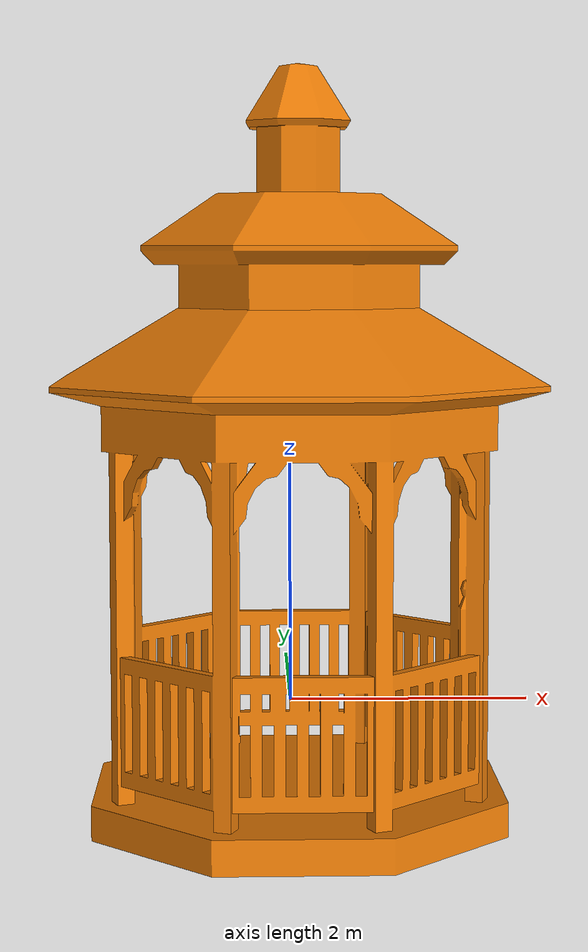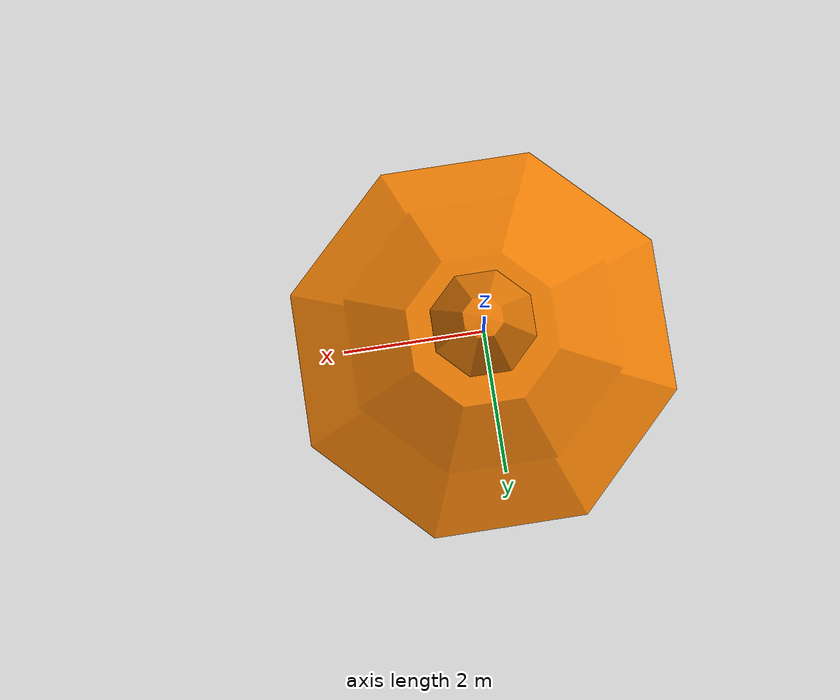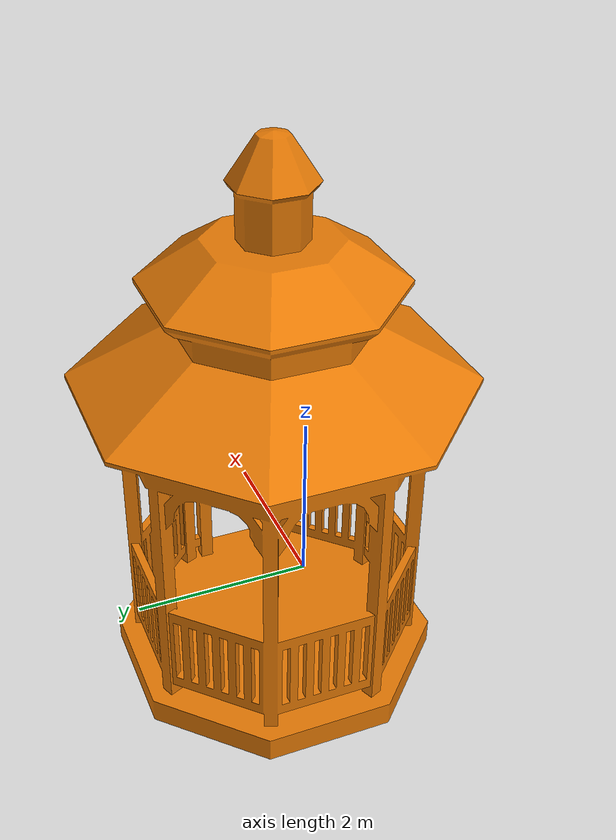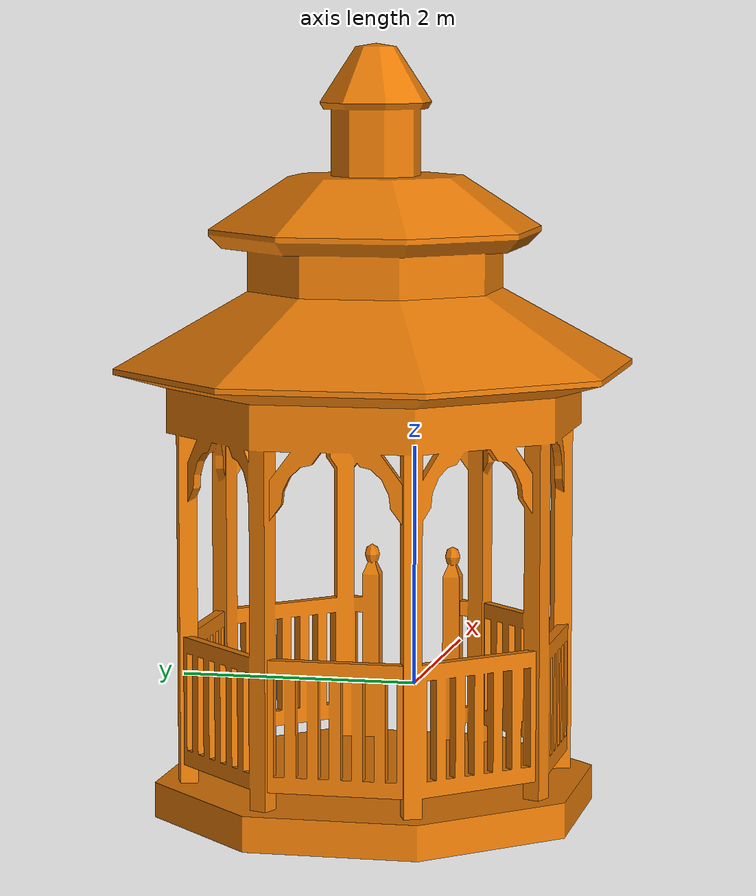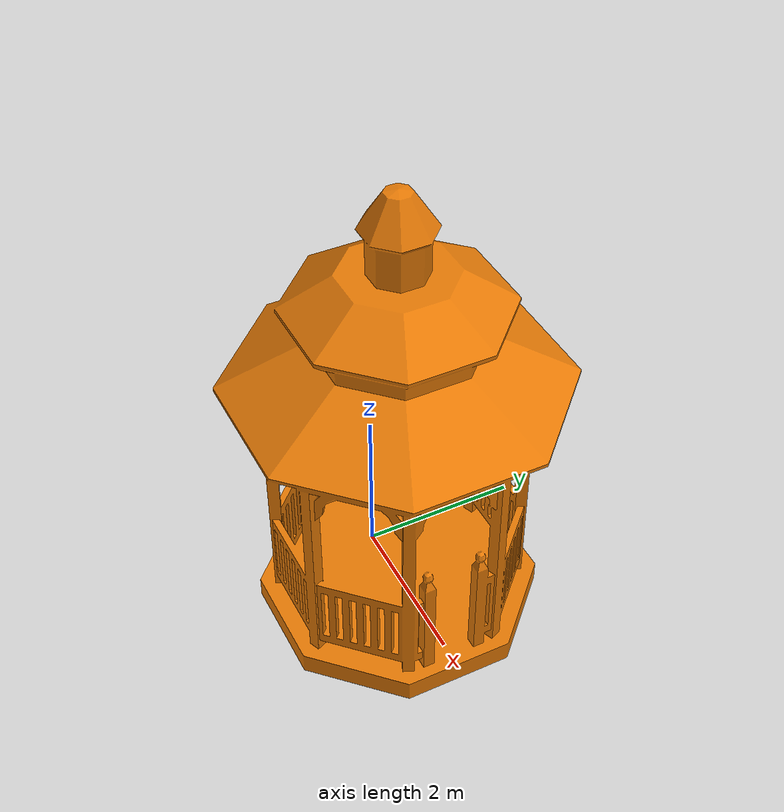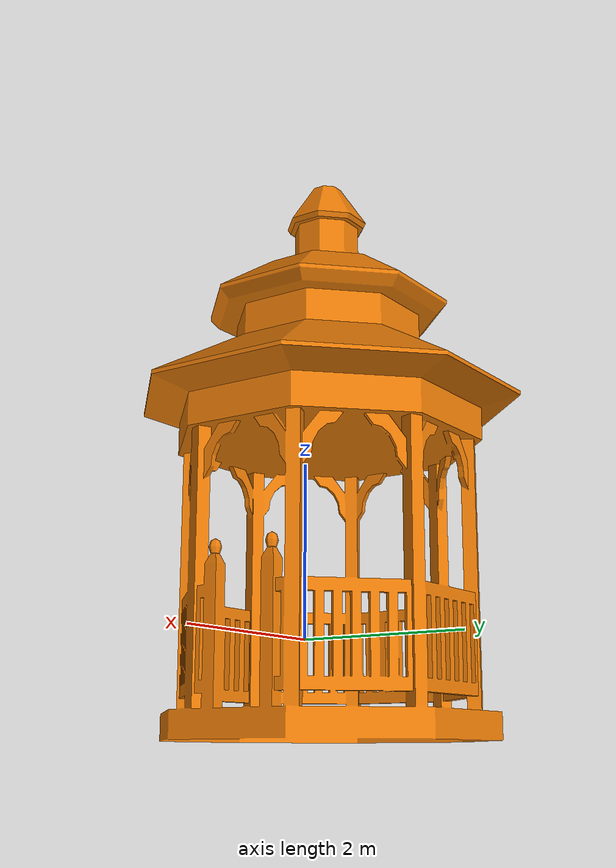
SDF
<?xml version='1.0'?>
<sdf version='1.7'>
  <model name='gazebo'>
    <link name='link'>
      <self_collide>0</self_collide>
      <enable_wind>0</enable_wind>
      <kinematic>0</kinematic>
      <pose>0.076868 0.347087 -1.10059 0 -0 0</pose>
      <gravity>1</gravity>
      <inertial>
        <mass>1</mass>
        <pose>0 0 0 0 -0 0</pose>
        <inertia>
          <ixx>1</ixx>
          <ixy>0</ixy>
          <ixz>0</ixz>
          <iyy>1</iyy>
          <iyz>0</iyz>
          <izz>1</izz>
        </inertia>
      </inertial>
      <visual name='visual'>
        <geometry>
          <mesh>
            <scale>1.5 1.5 2</scale>
            <uri>model://gazebo/meshes/gazebo.dae</uri>
          </mesh>
        </geometry>
        <material>
          <shader type='pixel'>
            <normal_map>__default__</normal_map>
          </shader>
          <script>
            <name>Gazebo/Grey</name>
            <uri>__default__</uri>
          </script>
          <ambient>0.9 0.475 0.02 1</ambient>
          <diffuse>0.7 0.7 0.7 1</diffuse>
          <specular>0.01 0.01 0.01 1</specular>
          <emissive>0 0 0 1</emissive>
        </material>
        <pose>0 0 0 0 -0 0</pose>
        <transparency>0</transparency>
        <cast_shadows>1</cast_shadows>
      </visual>
      <collision name='collision'>
        <laser_retro>0</laser_retro>
        <max_contacts>10</max_contacts>
        <pose>0 0 0 0 -0 0</pose>
        <geometry>
          <mesh>
            <uri>/home/filip/.gazebo/models/gazebo/meshes/gazebo.dae</uri>
            <scale>1.5 1.5 2</scale>
          </mesh>
        </geometry>
        <surface>
          <friction>
            <ode>
              <mu>1</mu>
              <mu2>1</mu2>
              <fdir1>0 0 0</fdir1>
              <slip1>0</slip1>
              <slip2>0</slip2>
            </ode>
            <torsional>
              <coefficient>1</coefficient>
              <patch_radius>0</patch_radius>
              <surface_radius>0</surface_radius>
              <use_patch_radius>1</use_patch_radius>
              <ode>
                <slip>0</slip>
              </ode>
            </torsional>
          </friction>
          <bounce>
            <restitution_coefficient>0</restitution_coefficient>
            <threshold>1e+06</threshold>
          </bounce>
          <contact>
            <collide_without_contact>0</collide_without_contact>
            <collide_without_contact_bitmask>1</collide_without_contact_bitmask>
            <collide_bitmask>1</collide_bitmask>
            <ode>
              <soft_cfm>0</soft_cfm>
              <soft_erp>0.2</soft_erp>
              <kp>1e+13</kp>
              <kd>1</kd>
              <max_vel>0.01</max_vel>
              <min_depth>0</min_depth>
            </ode>
            <bullet>
              <split_impulse>1</split_impulse>
              <split_impulse_penetration_threshold>-0.01</split_impulse_penetration_threshold>
              <soft_cfm>0</soft_cfm>
              <soft_erp>0.2</soft_erp>
              <kp>1e+13</kp>
              <kd>1</kd>
            </bullet>
          </contact>
        </surface>
      </collision>
    </link>
    <static>1</static>
    <allow_auto_disable>1</allow_auto_disable>
  </model>
</sdf>
